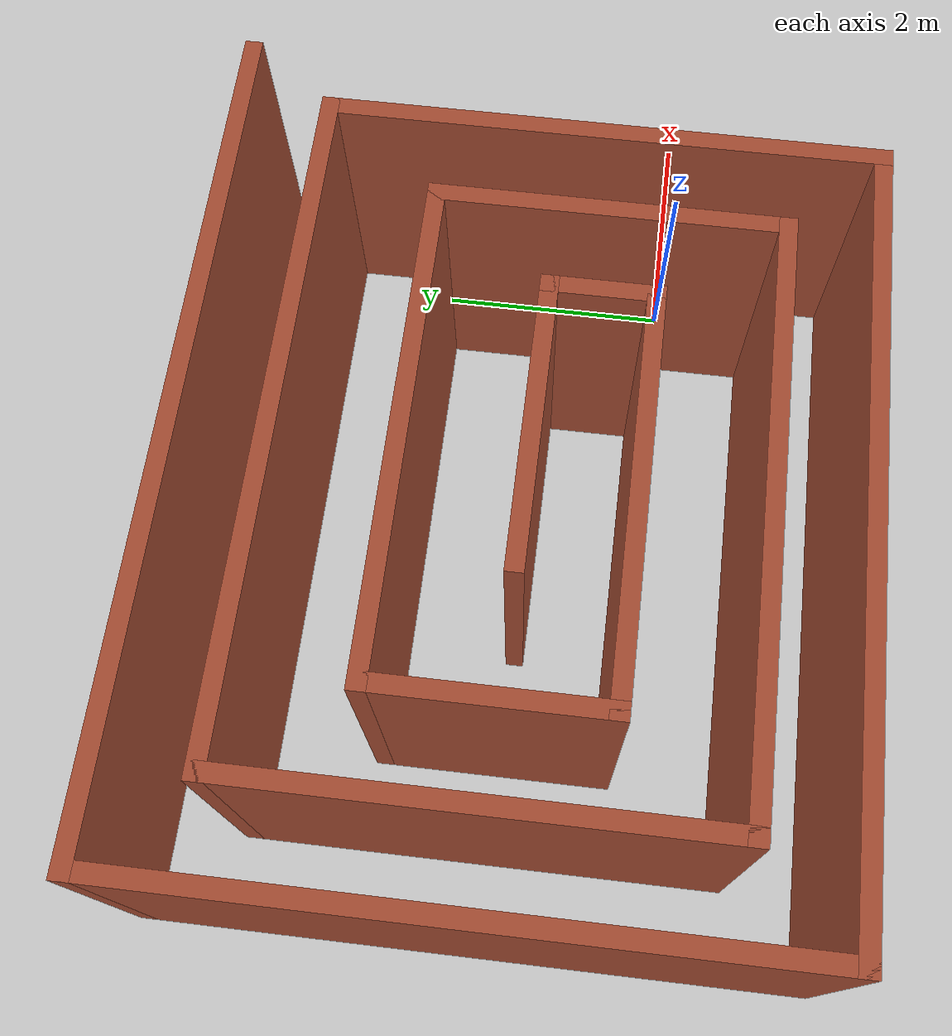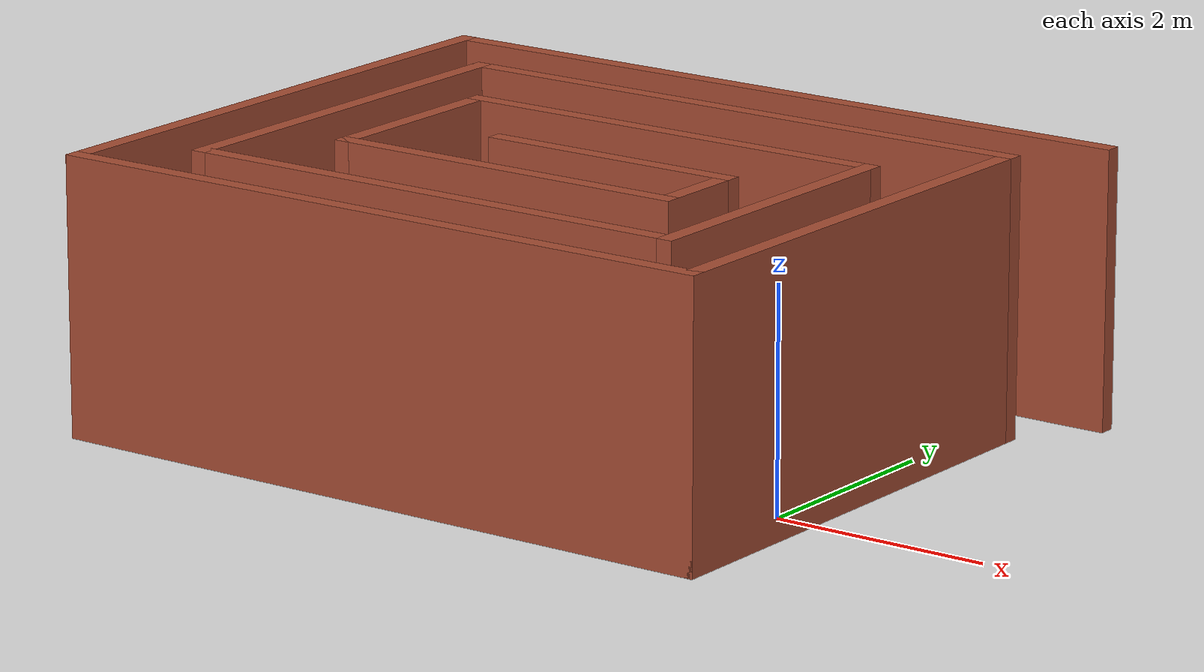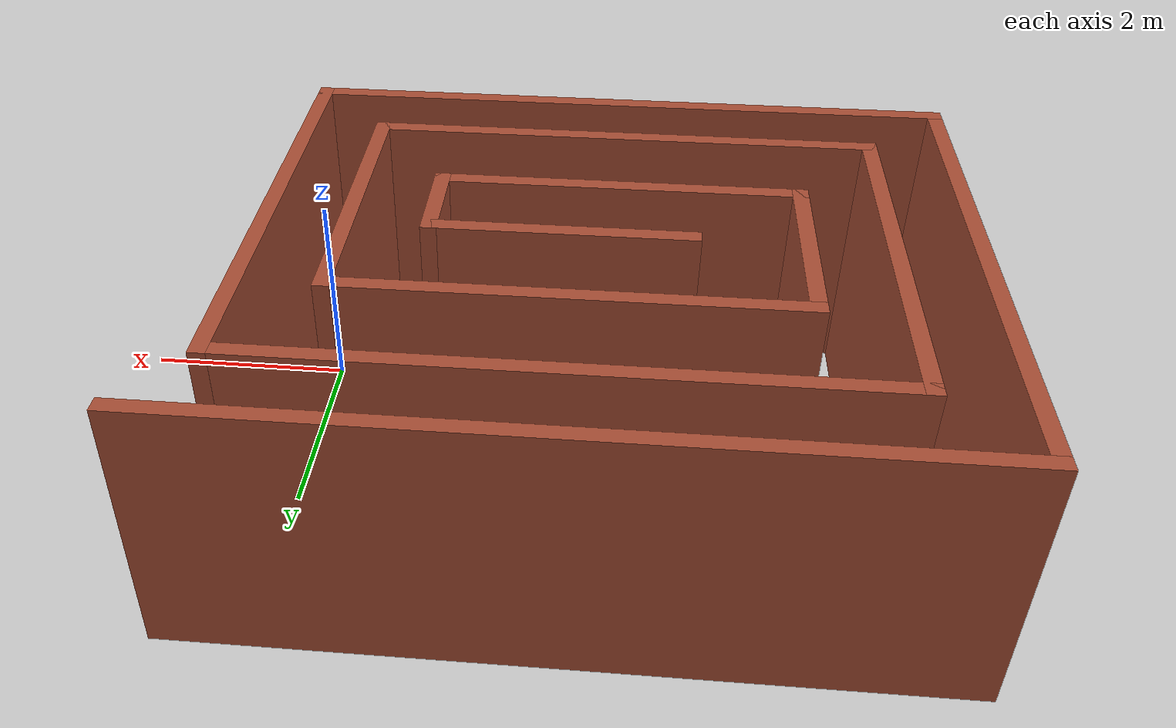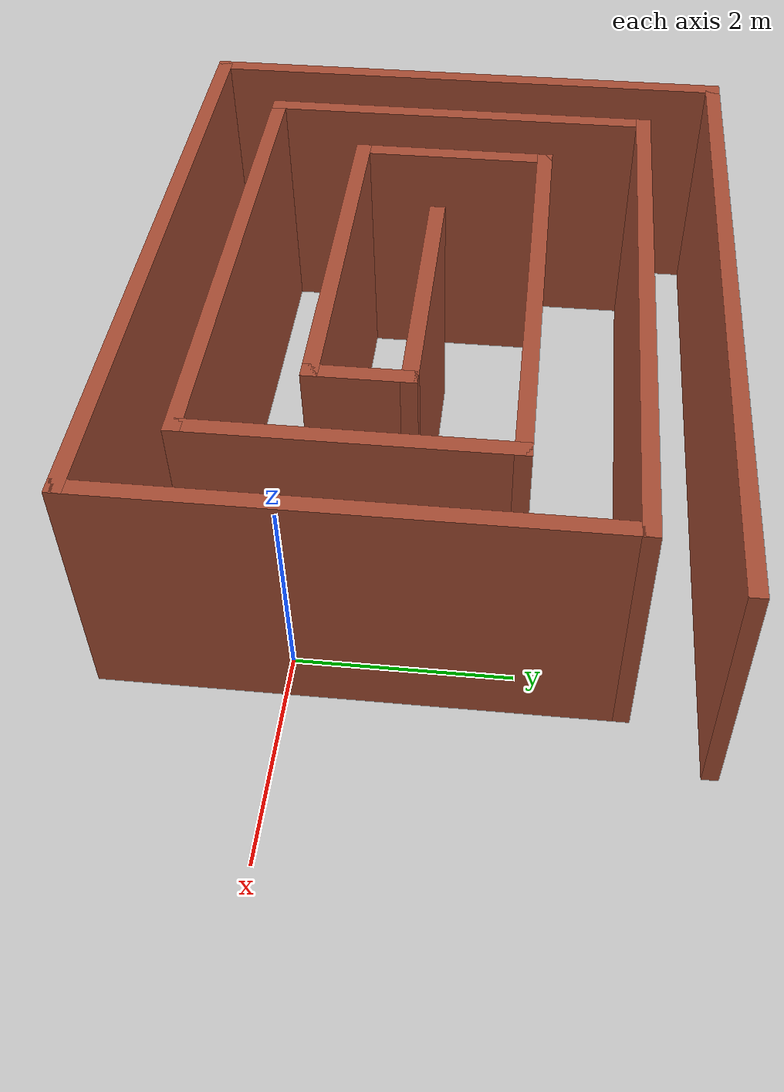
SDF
<?xml version='1.0'?>
<sdf version='1.7'>
  <model name='Basic_Brick_Maze'>
    <pose>-2.63506 1.04027 0 0 -0 0</pose>
    <link name='Wall_0'>
      <collision name='Wall_0_Collision'>
        <geometry>
          <box>
            <size>7 0.15 2.5</size>
          </box>
        </geometry>
        <pose>0 0 1.25 0 -0 0</pose>
      </collision>
      <visual name='Wall_0_Visual'>
        <pose>0 0 1.25 0 -0 0</pose>
        <geometry>
          <box>
            <size>7 0.15 2.5</size>
          </box>
        </geometry>
        <material>
          <script>
            <uri>file://media/materials/scripts/gazebo.material</uri>
            <name>Gazebo/Bricks</name>
          </script>
          <ambient>1 1 1 1</ambient>
        </material>
        <meta>
          <layer>0</layer>
        </meta>
      </visual>
      <pose>0 2.675 0 0 -0 3.14159</pose>
    </link>
    <link name='Wall_1'>
      <collision name='Wall_1_Collision'>
        <geometry>
          <box>
            <size>5.5 0.15 2.5</size>
          </box>
        </geometry>
        <pose>0 0 1.25 0 -0 0</pose>
      </collision>
      <visual name='Wall_1_Visual'>
        <pose>0 0 1.25 0 -0 0</pose>
        <geometry>
          <box>
            <size>5.5 0.15 2.5</size>
          </box>
        </geometry>
        <material>
          <script>
            <uri>file://media/materials/scripts/gazebo.material</uri>
            <name>Gazebo/Bricks</name>
          </script>
          <ambient>1 1 1 1</ambient>
        </material>
        <meta>
          <layer>0</layer>
        </meta>
      </visual>
      <pose>-3.425 0 0 0 -0 -1.5708</pose>
    </link>
    <link name='Wall_10'>
      <collision name='Wall_10_Collision'>
        <geometry>
          <box>
            <size>3.5 0.15 2.5</size>
          </box>
        </geometry>
        <pose>0 0 1.25 0 -0 0</pose>
      </collision>
      <visual name='Wall_10_Visual'>
        <pose>0 0 1.25 0 -0 0</pose>
        <geometry>
          <box>
            <size>3.5 0.15 2.5</size>
          </box>
        </geometry>
        <material>
          <script>
            <uri>file://media/materials/scripts/gazebo.material</uri>
            <name>Gazebo/Bricks</name>
          </script>
          <ambient>1 1 1 1</ambient>
        </material>
        <meta>
          <layer>0</layer>
        </meta>
      </visual>
      <pose>-0.25 -0.925 0 0 -0 0</pose>
    </link>
    <link name='Wall_11'>
      <collision name='Wall_11_Collision'>
        <geometry>
          <box>
            <size>1 0.15 2.5</size>
          </box>
        </geometry>
        <pose>0 0 1.25 0 -0 0</pose>
      </collision>
      <visual name='Wall_11_Visual'>
        <pose>0 0 1.25 0 -0 0</pose>
        <geometry>
          <box>
            <size>1 0.15 2.5</size>
          </box>
        </geometry>
        <material>
          <script>
            <uri>file://media/materials/scripts/gazebo.material</uri>
            <name>Gazebo/Bricks</name>
          </script>
          <ambient>1 1 1 1</ambient>
        </material>
        <meta>
          <layer>0</layer>
        </meta>
      </visual>
      <pose>1.425 -0.5 0 0 -0 1.5708</pose>
    </link>
    <link name='Wall_12'>
      <collision name='Wall_12_Collision'>
        <geometry>
          <box>
            <size>2.5 0.15 2.5</size>
          </box>
        </geometry>
        <pose>0 0 1.25 0 -0 0</pose>
      </collision>
      <visual name='Wall_12_Visual'>
        <pose>0 0 1.25 0 -0 0</pose>
        <geometry>
          <box>
            <size>2.5 0.15 2.5</size>
          </box>
        </geometry>
        <material>
          <script>
            <uri>file://media/materials/scripts/gazebo.material</uri>
            <name>Gazebo/Bricks</name>
          </script>
          <ambient>1 1 1 1</ambient>
        </material>
        <meta>
          <layer>0</layer>
        </meta>
      </visual>
      <pose>0.25 -0.075 0 0 -0 3.14159</pose>
    </link>
    <link name='Wall_2'>
      <collision name='Wall_2_Collision'>
        <geometry>
          <box>
            <size>6.5 0.15 2.5</size>
          </box>
        </geometry>
        <pose>0 0 1.25 0 -0 0</pose>
      </collision>
      <visual name='Wall_2_Visual'>
        <pose>0 0 1.25 0 -0 0</pose>
        <geometry>
          <box>
            <size>6.5 0.15 2.5</size>
          </box>
        </geometry>
        <material>
          <script>
            <uri>file://media/materials/scripts/gazebo.material</uri>
            <name>Gazebo/Bricks</name>
          </script>
          <ambient>1 1 1 1</ambient>
        </material>
        <meta>
          <layer>0</layer>
        </meta>
      </visual>
      <pose>-0.25 -2.675 0 0 -0 0</pose>
    </link>
    <link name='Wall_3'>
      <collision name='Wall_3_Collision'>
        <geometry>
          <box>
            <size>4.75 0.15 2.5</size>
          </box>
        </geometry>
        <pose>0 0 1.25 0 -0 0</pose>
      </collision>
      <visual name='Wall_3_Visual'>
        <pose>0 0 1.25 0 -0 0</pose>
        <geometry>
          <box>
            <size>4.75 0.15 2.5</size>
          </box>
        </geometry>
        <material>
          <script>
            <uri>file://media/materials/scripts/gazebo.material</uri>
            <name>Gazebo/Bricks</name>
          </script>
          <ambient>1 1 1 1</ambient>
        </material>
        <meta>
          <layer>0</layer>
        </meta>
      </visual>
      <pose>2.925 -0.375 0 0 -0 1.5708</pose>
    </link>
    <link name='Wall_4'>
      <collision name='Wall_4_Collision'>
        <geometry>
          <box>
            <size>5.75 0.15 2.5</size>
          </box>
        </geometry>
        <pose>0 0 1.25 0 -0 0</pose>
      </collision>
      <visual name='Wall_4_Visual'>
        <pose>0 0 1.25 0 -0 0</pose>
        <geometry>
          <box>
            <size>5.75 0.15 2.5</size>
          </box>
        </geometry>
        <material>
          <script>
            <uri>file://media/materials/scripts/gazebo.material</uri>
            <name>Gazebo/Bricks</name>
          </script>
          <ambient>1 1 1 1</ambient>
        </material>
        <meta>
          <layer>0</layer>
        </meta>
      </visual>
      <pose>0.125 1.925 0 0 -0 3.14159</pose>
    </link>
    <link name='Wall_5'>
      <collision name='Wall_5_Collision'>
        <geometry>
          <box>
            <size>4 0.15 2.5</size>
          </box>
        </geometry>
        <pose>0 0 1.25 0 -0 0</pose>
      </collision>
      <visual name='Wall_5_Visual'>
        <pose>0 0 1.25 0 -0 0</pose>
        <geometry>
          <box>
            <size>4 0.15 2.5</size>
          </box>
        </geometry>
        <material>
          <script>
            <uri>file://media/materials/scripts/gazebo.material</uri>
            <name>Gazebo/Bricks</name>
          </script>
          <ambient>1 1 1 1</ambient>
        </material>
        <meta>
          <layer>0</layer>
        </meta>
      </visual>
      <pose>-2.675 0 0 0 -0 -1.5708</pose>
    </link>
    <link name='Wall_6'>
      <collision name='Wall_6_Collision'>
        <geometry>
          <box>
            <size>5 0.15 2.5</size>
          </box>
        </geometry>
        <pose>0 0 1.25 0 -0 0</pose>
      </collision>
      <visual name='Wall_6_Visual'>
        <pose>0 0 1.25 0 -0 0</pose>
        <geometry>
          <box>
            <size>5 0.15 2.5</size>
          </box>
        </geometry>
        <material>
          <script>
            <uri>file://media/materials/scripts/gazebo.material</uri>
            <name>Gazebo/Bricks</name>
          </script>
          <ambient>1 1 1 1</ambient>
        </material>
        <meta>
          <layer>0</layer>
        </meta>
      </visual>
      <pose>-0.25 -1.925 0 0 -0 0</pose>
    </link>
    <link name='Wall_7'>
      <collision name='Wall_7_Collision'>
        <geometry>
          <box>
            <size>3 0.15 2.5</size>
          </box>
        </geometry>
        <pose>0 0 1.25 0 -0 0</pose>
      </collision>
      <visual name='Wall_7_Visual'>
        <pose>0 0 1.25 0 -0 0</pose>
        <geometry>
          <box>
            <size>3 0.15 2.5</size>
          </box>
        </geometry>
        <material>
          <script>
            <uri>file://media/materials/scripts/gazebo.material</uri>
            <name>Gazebo/Bricks</name>
          </script>
          <ambient>1 1 1 1</ambient>
        </material>
        <meta>
          <layer>0</layer>
        </meta>
      </visual>
      <pose>2.175 -0.5 0 0 -0 1.5708</pose>
    </link>
    <link name='Wall_8'>
      <collision name='Wall_8_Collision'>
        <geometry>
          <box>
            <size>4.25 0.15 2.5</size>
          </box>
        </geometry>
        <pose>0 0 1.25 0 -0 0</pose>
      </collision>
      <visual name='Wall_8_Visual'>
        <pose>0 0 1.25 0 -0 0</pose>
        <geometry>
          <box>
            <size>4.25 0.15 2.5</size>
          </box>
        </geometry>
        <material>
          <script>
            <uri>file://media/materials/scripts/gazebo.material</uri>
            <name>Gazebo/Bricks</name>
          </script>
          <ambient>1 1 1 1</ambient>
        </material>
        <meta>
          <layer>0</layer>
        </meta>
      </visual>
      <pose>0.125 0.925 0 0 -0 3.14159</pose>
    </link>
    <link name='Wall_9'>
      <collision name='Wall_9_Collision'>
        <geometry>
          <box>
            <size>2 0.15 2.5</size>
          </box>
        </geometry>
        <pose>0 0 1.25 0 -0 0</pose>
      </collision>
      <visual name='Wall_9_Visual'>
        <pose>0 0 1.25 0 -0 0</pose>
        <geometry>
          <box>
            <size>2 0.15 2.5</size>
          </box>
        </geometry>
        <material>
          <script>
            <uri>file://media/materials/scripts/gazebo.material</uri>
            <name>Gazebo/Bricks</name>
          </script>
          <ambient>1 1 1 1</ambient>
        </material>
        <meta>
          <layer>0</layer>
        </meta>
      </visual>
      <pose>-1.925 0 0 0 -0 -1.5708</pose>
    </link>
    <static>1</static>
  </model>
</sdf>
